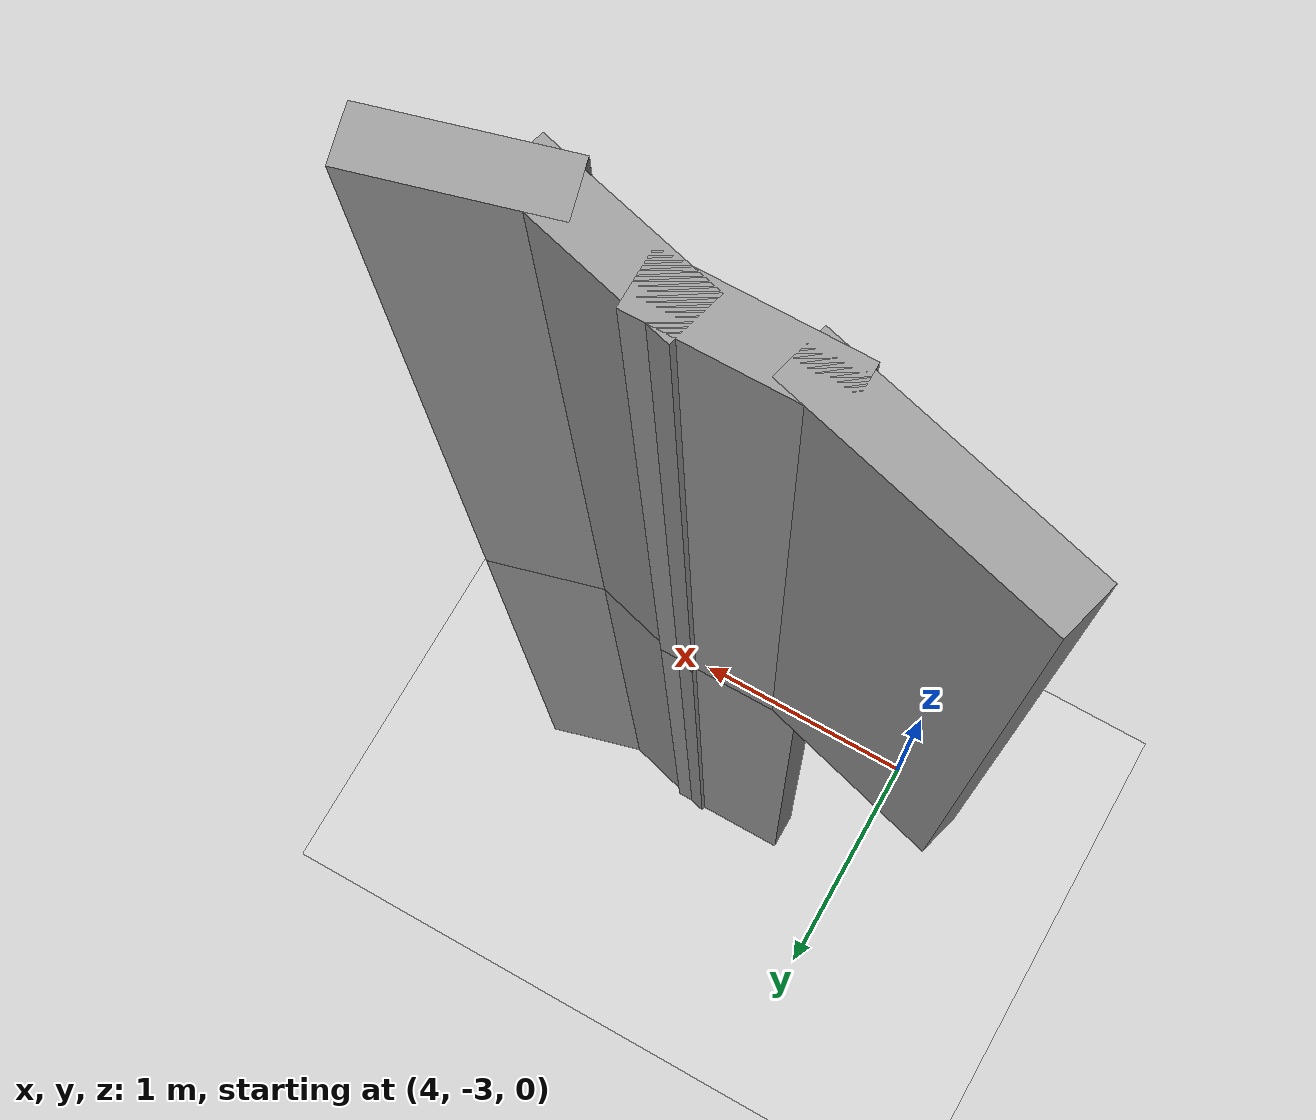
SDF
<sdf version="1.7">
 <world name="default">
  <model name="ground_plane">
   <static>1</static>
   <link name="link">
    <collision name="collision">
     <geometry><plane><normal>0 0 1</normal><size>100 100</size></plane></geometry>
     <surface>
      <contact><collide_bitmask>65535</collide_bitmask></contact>
      <friction><ode><mu>100</mu><mu2>50</mu2></ode></friction>
     </surface>
    </collision>
    <visual name="visual">
     <cast_shadows>0</cast_shadows>
     <geometry><plane><normal>0 0 1</normal><size>100 100</size></plane></geometry>
     <material>
      <script><uri>file://media/materials/scripts/gazebo.material</uri><name>Gazebo/Grey</name></script>
     </material>
    </visual>
   </link>
  </model>
  <model name="EnvDC01">
   <link name="Wall_160">
    <pose>-1.29559 3.7136 0 0 0 -2.87979</pose>
    <visual name="Wall_160_Visual">
     <pose>0 0 1.25 0 -0 0</pose>
     <geometry><box><size>0.5 0.15 2.5</size></box></geometry>
     <material>
      <script><uri>file://media/materials/scripts/gazebo.material</uri><name>Gazebo/Grey</name></script>
      <ambient>1 1 1 1</ambient>
      <shader type="pixel"/>
     </material>
     <meta><layer>0</layer></meta>
    </visual>
    <collision name="Wall_160_Collision">
     <pose>0 0 1.25 0 -0 0</pose>
     <geometry><box><size>0.5 0.15 2.5</size></box></geometry>
     <surface>
      <friction>
       <ode><mu>1</mu><mu2>1</mu2><fdir1>0 0 0</fdir1><slip1>0</slip1><slip2>0</slip2></ode>
       <torsional>
        <coefficient>1</coefficient>
        <patch_radius>0</patch_radius>
        <surface_radius>0</surface_radius>
        <use_patch_radius>1</use_patch_radius>
        <ode><slip>0</slip></ode>
       </torsional>
      </friction>
      <bounce><restitution_coefficient>0</restitution_coefficient><threshold>1e+06</threshold></bounce>
      <contact>
       <collide_without_contact>0</collide_without_contact>
       <collide_without_contact_bitmask>1</collide_without_contact_bitmask>
       <collide_bitmask>1</collide_bitmask>
       <ode>
        <soft_cfm>0</soft_cfm>
        <soft_erp>0.2</soft_erp>
        <kp>1e+13</kp>
        <kd>1</kd>
        <max_vel>0.01</max_vel>
        <min_depth>0</min_depth>
       </ode>
       <bullet>
        <split_impulse>1</split_impulse>
        <split_impulse_penetration_threshold>-0.01</split_impulse_penetration_threshold>
        <soft_cfm>0</soft_cfm>
        <soft_erp>0.2</soft_erp>
        <kp>1e+13</kp>
        <kd>1</kd>
       </bullet>
      </contact>
     </surface>
    </collision>
   </link>
   <link name="Wall_162">
    <pose>-1.63367 3.7136 0 0 -0 2.87979</pose>
    <visual name="Wall_162_Visual">
     <pose>0 0 1.25 0 -0 0</pose>
     <geometry><box><size>0.5 0.15 2.5</size></box></geometry>
     <material>
      <script><uri>file://media/materials/scripts/gazebo.material</uri><name>Gazebo/Grey</name></script>
      <ambient>1 1 1 1</ambient>
      <shader type="pixel"/>
     </material>
     <meta><layer>0</layer></meta>
    </visual>
    <collision name="Wall_162_Collision">
     <pose>0 0 1.25 0 -0 0</pose>
     <geometry><box><size>0.5 0.15 2.5</size></box></geometry>
     <surface>
      <friction>
       <ode><mu>1</mu><mu2>1</mu2><fdir1>0 0 0</fdir1><slip1>0</slip1><slip2>0</slip2></ode>
       <torsional>
        <coefficient>1</coefficient>
        <patch_radius>0</patch_radius>
        <surface_radius>0</surface_radius>
        <use_patch_radius>1</use_patch_radius>
        <ode><slip>0</slip></ode>
       </torsional>
      </friction>
      <bounce><restitution_coefficient>0</restitution_coefficient><threshold>1e+06</threshold></bounce>
      <contact>
       <collide_without_contact>0</collide_without_contact>
       <collide_without_contact_bitmask>1</collide_without_contact_bitmask>
       <collide_bitmask>1</collide_bitmask>
       <ode>
        <soft_cfm>0</soft_cfm>
        <soft_erp>0.2</soft_erp>
        <kp>1e+13</kp>
        <kd>1</kd>
        <max_vel>0.01</max_vel>
        <min_depth>0</min_depth>
       </ode>
       <bullet>
        <split_impulse>1</split_impulse>
        <split_impulse_penetration_threshold>-0.01</split_impulse_penetration_threshold>
        <soft_cfm>0</soft_cfm>
        <soft_erp>0.2</soft_erp>
        <kp>1e+13</kp>
        <kd>1</kd>
       </bullet>
      </contact>
     </surface>
    </collision>
   </link>
   <link name="Wall_163">
    <pose>-1.97771 3.75889 0 0 -0 3.14159</pose>
    <visual name="Wall_163_Visual">
     <pose>0 0 1.25 0 -0 0</pose>
     <geometry><box><size>0.5 0.15 2.5</size></box></geometry>
     <material>
      <script><uri>file://media/materials/scripts/gazebo.material</uri><name>Gazebo/Grey</name></script>
      <ambient>1 1 1 1</ambient>
      <shader type="pixel"/>
     </material>
     <meta><layer>0</layer></meta>
    </visual>
    <collision name="Wall_163_Collision">
     <pose>0 0 1.25 0 -0 0</pose>
     <geometry><box><size>0.5 0.15 2.5</size></box></geometry>
     <surface>
      <friction>
       <ode><mu>1</mu><mu2>1</mu2><fdir1>0 0 0</fdir1><slip1>0</slip1><slip2>0</slip2></ode>
       <torsional>
        <coefficient>1</coefficient>
        <patch_radius>0</patch_radius>
        <surface_radius>0</surface_radius>
        <use_patch_radius>1</use_patch_radius>
        <ode><slip>0</slip></ode>
       </torsional>
      </friction>
      <bounce><restitution_coefficient>0</restitution_coefficient><threshold>1e+06</threshold></bounce>
      <contact>
       <collide_without_contact>0</collide_without_contact>
       <collide_without_contact_bitmask>1</collide_without_contact_bitmask>
       <collide_bitmask>1</collide_bitmask>
       <ode>
        <soft_cfm>0</soft_cfm>
        <soft_erp>0.2</soft_erp>
        <kp>1e+13</kp>
        <kd>1</kd>
        <max_vel>0.01</max_vel>
        <min_depth>0</min_depth>
       </ode>
       <bullet>
        <split_impulse>1</split_impulse>
        <split_impulse_penetration_threshold>-0.01</split_impulse_penetration_threshold>
        <soft_cfm>0</soft_cfm>
        <soft_erp>0.2</soft_erp>
        <kp>1e+13</kp>
        <kd>1</kd>
       </bullet>
      </contact>
     </surface>
    </collision>
   </link>
   <link name="Wall_349">
    <pose>-1.29559 3.7136 2.5 0 0 -2.87979</pose>
    <visual name="Wall_349_Visual">
     <pose>0 0 1.25 0 -0 0</pose>
     <geometry><box><size>0.5 0.15 2.5</size></box></geometry>
     <material>
      <script><uri>file://media/materials/scripts/gazebo.material</uri><name>Gazebo/Grey</name></script>
      <ambient>1 1 1 1</ambient>
      <shader type="pixel"/>
     </material>
     <meta><layer>1</layer></meta>
    </visual>
    <collision name="Wall_349_Collision">
     <pose>0 0 1.25 0 -0 0</pose>
     <geometry><box><size>0.5 0.15 2.5</size></box></geometry>
     <surface>
      <friction>
       <ode><mu>1</mu><mu2>1</mu2><fdir1>0 0 0</fdir1><slip1>0</slip1><slip2>0</slip2></ode>
       <torsional>
        <coefficient>1</coefficient>
        <patch_radius>0</patch_radius>
        <surface_radius>0</surface_radius>
        <use_patch_radius>1</use_patch_radius>
        <ode><slip>0</slip></ode>
       </torsional>
      </friction>
      <bounce><restitution_coefficient>0</restitution_coefficient><threshold>1e+06</threshold></bounce>
      <contact>
       <collide_without_contact>0</collide_without_contact>
       <collide_without_contact_bitmask>1</collide_without_contact_bitmask>
       <collide_bitmask>1</collide_bitmask>
       <ode>
        <soft_cfm>0</soft_cfm>
        <soft_erp>0.2</soft_erp>
        <kp>1e+13</kp>
        <kd>1</kd>
        <max_vel>0.01</max_vel>
        <min_depth>0</min_depth>
       </ode>
       <bullet>
        <split_impulse>1</split_impulse>
        <split_impulse_penetration_threshold>-0.01</split_impulse_penetration_threshold>
        <soft_cfm>0</soft_cfm>
        <soft_erp>0.2</soft_erp>
        <kp>1e+13</kp>
        <kd>1</kd>
       </bullet>
      </contact>
     </surface>
    </collision>
   </link>
   <link name="Wall_350">
    <pose>-1.63367 3.7136 2.5 0 -0 2.87979</pose>
    <visual name="Wall_350_Visual">
     <pose>0 0 1.25 0 -0 0</pose>
     <geometry><box><size>0.5 0.15 2.5</size></box></geometry>
     <material>
      <script><uri>file://media/materials/scripts/gazebo.material</uri><name>Gazebo/Grey</name></script>
      <ambient>1 1 1 1</ambient>
      <shader type="pixel"/>
     </material>
     <meta><layer>1</layer></meta>
    </visual>
    <collision name="Wall_350_Collision">
     <pose>0 0 1.25 0 -0 0</pose>
     <geometry><box><size>0.5 0.15 2.5</size></box></geometry>
     <surface>
      <friction>
       <ode><mu>1</mu><mu2>1</mu2><fdir1>0 0 0</fdir1><slip1>0</slip1><slip2>0</slip2></ode>
       <torsional>
        <coefficient>1</coefficient>
        <patch_radius>0</patch_radius>
        <surface_radius>0</surface_radius>
        <use_patch_radius>1</use_patch_radius>
        <ode><slip>0</slip></ode>
       </torsional>
      </friction>
      <bounce><restitution_coefficient>0</restitution_coefficient><threshold>1e+06</threshold></bounce>
      <contact>
       <collide_without_contact>0</collide_without_contact>
       <collide_without_contact_bitmask>1</collide_without_contact_bitmask>
       <collide_bitmask>1</collide_bitmask>
       <ode>
        <soft_cfm>0</soft_cfm>
        <soft_erp>0.2</soft_erp>
        <kp>1e+13</kp>
        <kd>1</kd>
        <max_vel>0.01</max_vel>
        <min_depth>0</min_depth>
       </ode>
       <bullet>
        <split_impulse>1</split_impulse>
        <split_impulse_penetration_threshold>-0.01</split_impulse_penetration_threshold>
        <soft_cfm>0</soft_cfm>
        <soft_erp>0.2</soft_erp>
        <kp>1e+13</kp>
        <kd>1</kd>
       </bullet>
      </contact>
     </surface>
    </collision>
   </link>
   <link name="Wall_351">
    <pose>-1.97771 3.75889 2.5 0 -0 3.14159</pose>
    <visual name="Wall_351_Visual">
     <pose>0 0 1.25 0 -0 0</pose>
     <geometry><box><size>0.5 0.15 2.5</size></box></geometry>
     <material>
      <script><uri>file://media/materials/scripts/gazebo.material</uri><name>Gazebo/Grey</name></script>
      <ambient>1 1 1 1</ambient>
      <shader type="pixel"/>
     </material>
     <meta><layer>1</layer></meta>
    </visual>
    <collision name="Wall_351_Collision">
     <pose>0 0 1.25 0 -0 0</pose>
     <geometry><box><size>0.5 0.15 2.5</size></box></geometry>
     <surface>
      <friction>
       <ode><mu>1</mu><mu2>1</mu2><fdir1>0 0 0</fdir1><slip1>0</slip1><slip2>0</slip2></ode>
       <torsional>
        <coefficient>1</coefficient>
        <patch_radius>0</patch_radius>
        <surface_radius>0</surface_radius>
        <use_patch_radius>1</use_patch_radius>
        <ode><slip>0</slip></ode>
       </torsional>
      </friction>
      <bounce><restitution_coefficient>0</restitution_coefficient><threshold>1e+06</threshold></bounce>
      <contact>
       <collide_without_contact>0</collide_without_contact>
       <collide_without_contact_bitmask>1</collide_without_contact_bitmask>
       <collide_bitmask>1</collide_bitmask>
       <ode>
        <soft_cfm>0</soft_cfm>
        <soft_erp>0.2</soft_erp>
        <kp>1e+13</kp>
        <kd>1</kd>
        <max_vel>0.01</max_vel>
        <min_depth>0</min_depth>
       </ode>
       <bullet>
        <split_impulse>1</split_impulse>
        <split_impulse_penetration_threshold>-0.01</split_impulse_penetration_threshold>
        <soft_cfm>0</soft_cfm>
        <soft_erp>0.2</soft_erp>
        <kp>1e+13</kp>
        <kd>1</kd>
       </bullet>
      </contact>
     </surface>
    </collision>
   </link>
   <link name="Wall_352">
    <pose>-2.44248 3.83653 2.5 0 -0 2.87979</pose>
    <visual name="Wall_352_Visual">
     <pose>0 0 1.25 0 -0 0</pose>
     <geometry><box><size>0.75 0.15 2.5</size></box></geometry>
     <material>
      <script><uri>file://media/materials/scripts/gazebo.material</uri><name>Gazebo/Grey</name></script>
      <ambient>1 1 1 1</ambient>
      <shader type="pixel"/>
     </material>
     <meta><layer>1</layer></meta>
    </visual>
    <collision name="Wall_352_Collision">
     <pose>0 0 1.25 0 -0 0</pose>
     <geometry><box><size>0.75 0.15 2.5</size></box></geometry>
     <surface>
      <friction>
       <ode><mu>1</mu><mu2>1</mu2><fdir1>0 0 0</fdir1><slip1>0</slip1><slip2>0</slip2></ode>
       <torsional>
        <coefficient>1</coefficient>
        <patch_radius>0</patch_radius>
        <surface_radius>0</surface_radius>
        <use_patch_radius>1</use_patch_radius>
        <ode><slip>0</slip></ode>
       </torsional>
      </friction>
      <bounce><restitution_coefficient>0</restitution_coefficient><threshold>1e+06</threshold></bounce>
      <contact>
       <collide_without_contact>0</collide_without_contact>
       <collide_without_contact_bitmask>1</collide_without_contact_bitmask>
       <collide_bitmask>1</collide_bitmask>
       <ode>
        <soft_cfm>0</soft_cfm>
        <soft_erp>0.2</soft_erp>
        <kp>1e+13</kp>
        <kd>1</kd>
        <max_vel>0.01</max_vel>
        <min_depth>0</min_depth>
       </ode>
       <bullet>
        <split_impulse>1</split_impulse>
        <split_impulse_penetration_threshold>-0.01</split_impulse_penetration_threshold>
        <soft_cfm>0</soft_cfm>
        <soft_erp>0.2</soft_erp>
        <kp>1e+13</kp>
        <kd>1</kd>
       </bullet>
      </contact>
     </surface>
    </collision>
   </link>
   <static>1</static>
   <pose>6.55365 -6.2466 0 0 -0 0</pose>
  </model>
 </world>
</sdf>
